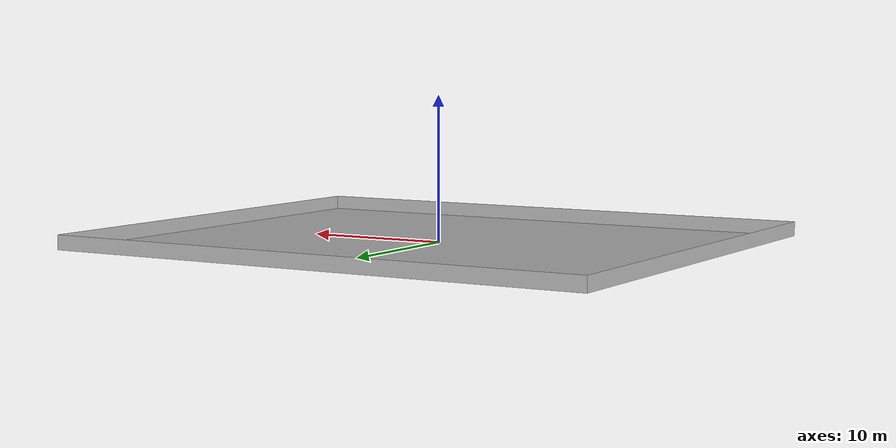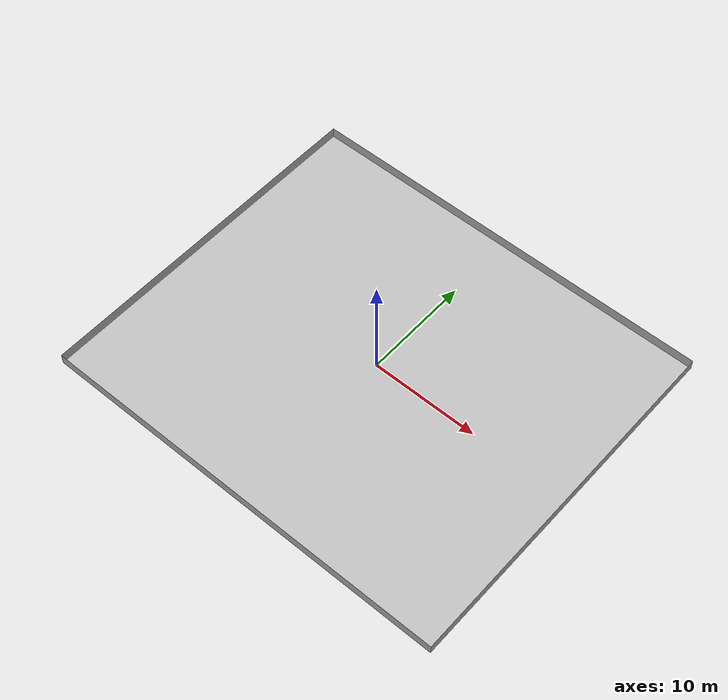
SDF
<?xml version='1.0' encoding='utf-8'?>
<sdf version="1.7">
<model name="template_model">
<link name="track">
<collision name="collision">
<pose>0 0 0 0 0 0</pose>
<geometry>
<mesh>
<uri>model://meshes/jyllandsringen_pro/jyllandsringen_pro_collision.dae</uri>
</mesh>
</geometry>
</collision>
<visual name="visual">
<pose>0 0 0 0 0 0</pose>
<geometry>
<mesh>
<uri>model://meshes/jyllandsringen_pro/jyllandsringen_pro.dae</uri>
</mesh>
</geometry>
</visual>
</link>
<static>1</static>
</model>
</sdf>
